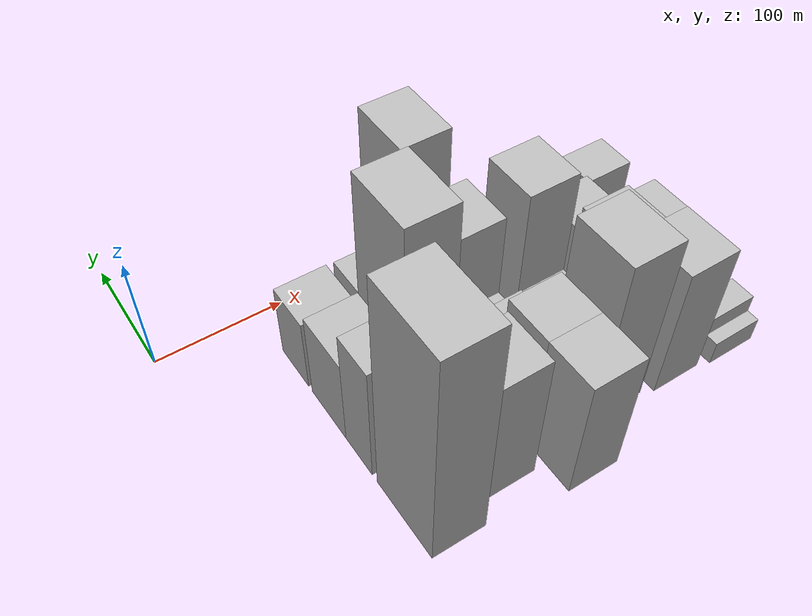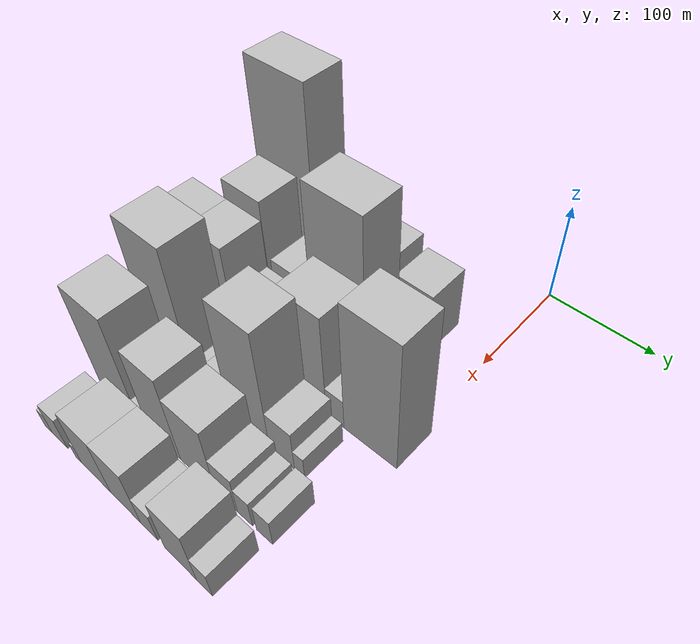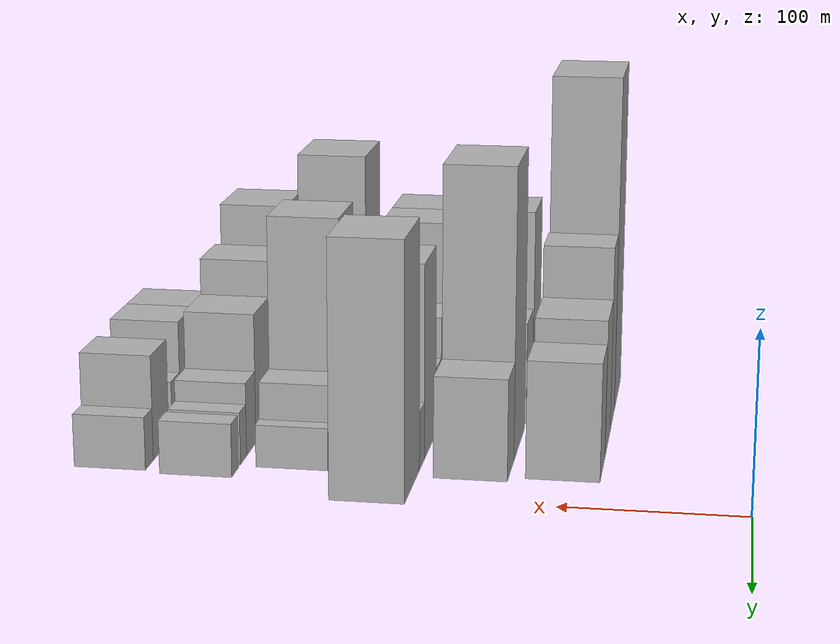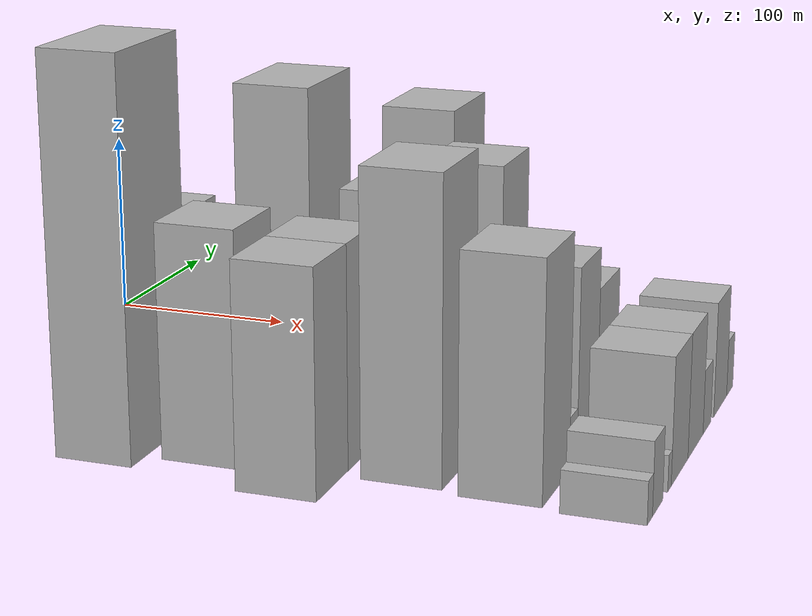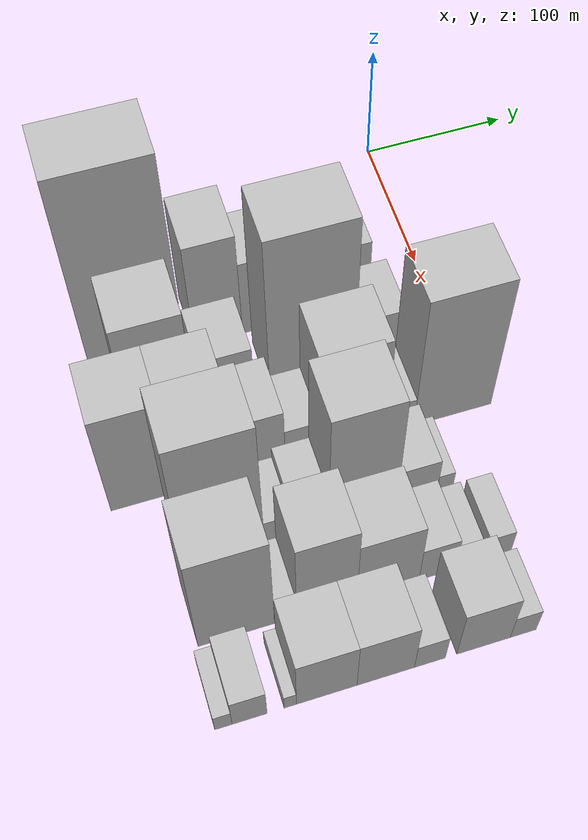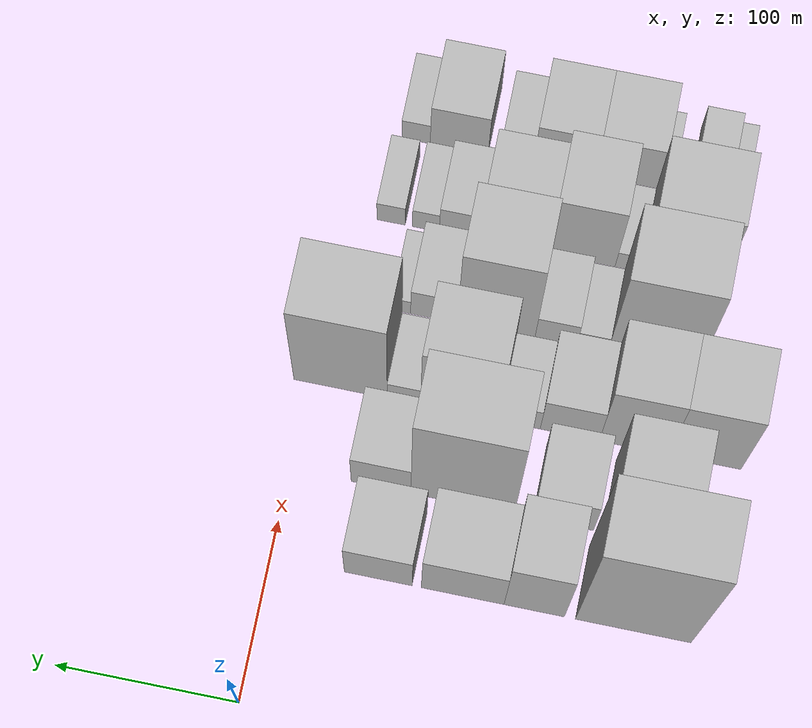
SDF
<sdf version="1.6">
 <world name="default">
  <model name="building_20">
   <static>1</static>
   <pose>100.0000 -197.3069 0 0.000000 0.000000 0.000000</pose>
   <link name="link">
    <pose>0 0 99.00 0 0 0</pose>
    <collision name="collision"><geometry><box><size>40.0000 62.5837 198.0000</size></box></geometry></collision>
    <visual name="visual">
     <cast_shadows>0</cast_shadows>
     <geometry><box><size>40.0000 62.5837 198.0000</size></box></geometry>
     <material>
      <script>
       <uri>model://HANNAS_wall/materials/scripts</uri>
       <uri>model://HANNAS_wall/materials/textures</uri>
       <name>vrc/HANNAS_wall</name>
      </script>
     </material>
    </visual>
   </link>
  </model>
  <model name="building_21">
   <static>1</static>
   <pose>100.0000 -143.6256 0 0.000000 0.000000 0.000000</pose>
   <link name="link">
    <pose>0 0 54.00 0 0 0</pose>
    <collision name="collision"><geometry><box><size>40.0000 32.7790 108.0000</size></box></geometry></collision>
    <visual name="visual">
     <cast_shadows>0</cast_shadows>
     <geometry><box><size>40.0000 32.7790 108.0000</size></box></geometry>
     <material>
      <script>
       <uri>model://HANNAS_wall/materials/scripts</uri>
       <uri>model://HANNAS_wall/materials/textures</uri>
       <name>vrc/HANNAS_wall</name>
      </script>
     </material>
    </visual>
   </link>
  </model>
  <model name="building_22">
   <static>1</static>
   <pose>100.0000 -104.7117 0 0.000000 0.000000 0.000000</pose>
   <link name="link">
    <pose>0 0 39.00 0 0 0</pose>
    <collision name="collision"><geometry><box><size>40.0000 45.0487 78.0000</size></box></geometry></collision>
    <visual name="visual">
     <cast_shadows>0</cast_shadows>
     <geometry><box><size>40.0000 45.0487 78.0000</size></box></geometry>
     <material>
      <script>
       <uri>model://HANNAS_wall/materials/scripts</uri>
       <uri>model://HANNAS_wall/materials/textures</uri>
       <name>vrc/HANNAS_wall</name>
      </script>
     </material>
    </visual>
   </link>
  </model>
  <model name="building_23">
   <static>1</static>
   <pose>100.0000 -58.7064 0 0.000000 0.000000 0.000000</pose>
   <link name="link">
    <pose>0 0 33.00 0 0 0</pose>
    <collision name="collision"><geometry><box><size>40.0000 36.9619 66.0000</size></box></geometry></collision>
    <visual name="visual">
     <cast_shadows>0</cast_shadows>
     <geometry><box><size>40.0000 36.9619 66.0000</size></box></geometry>
     <material>
      <script>
       <uri>model://HANNAS_wall/materials/scripts</uri>
       <uri>model://HANNAS_wall/materials/textures</uri>
       <name>vrc/HANNAS_wall</name>
      </script>
     </material>
    </visual>
   </link>
  </model>
  <model name="building_67">
   <static>1</static>
   <pose>149.0000 -192.8551 0 0.000000 0.000000 0.000000</pose>
   <link name="link">
    <pose>0 0 58.50 0 0 0</pose>
    <collision name="collision"><geometry><box><size>40.0000 42.7557 117.0000</size></box></geometry></collision>
    <visual name="visual">
     <cast_shadows>0</cast_shadows>
     <geometry><box><size>40.0000 42.7557 117.0000</size></box></geometry>
     <material>
      <script>
       <uri>model://HANNAS_wall/materials/scripts</uri>
       <uri>model://HANNAS_wall/materials/textures</uri>
       <name>vrc/HANNAS_wall</name>
      </script>
     </material>
    </visual>
   </link>
  </model>
  <model name="building_68">
   <static>1</static>
   <pose>149.0000 -149.8203 0 0.000000 0.000000 0.000000</pose>
   <link name="link">
    <pose>0 0 30.00 0 0 0</pose>
    <collision name="collision"><geometry><box><size>40.0000 33.3138 60.0000</size></box></geometry></collision>
    <visual name="visual">
     <cast_shadows>0</cast_shadows>
     <geometry><box><size>40.0000 33.3138 60.0000</size></box></geometry>
     <material>
      <script>
       <uri>model://HANNAS_wall/materials/scripts</uri>
       <uri>model://HANNAS_wall/materials/textures</uri>
       <name>vrc/HANNAS_wall</name>
      </script>
     </material>
    </visual>
   </link>
  </model>
  <model name="building_69">
   <static>1</static>
   <pose>149.0000 -94.7857 0 0.000000 0.000000 0.000000</pose>
   <link name="link">
    <pose>0 0 82.50 0 0 0</pose>
    <collision name="collision"><geometry><box><size>40.0000 56.7555 165.0000</size></box></geometry></collision>
    <visual name="visual">
     <cast_shadows>0</cast_shadows>
     <geometry><box><size>40.0000 56.7555 165.0000</size></box></geometry>
     <material>
      <script>
       <uri>model://HANNAS_wall/materials/scripts</uri>
       <uri>model://HANNAS_wall/materials/textures</uri>
       <name>vrc/HANNAS_wall</name>
      </script>
     </material>
    </visual>
   </link>
  </model>
  <model name="building_70">
   <static>1</static>
   <pose>149.0000 -50.0288 0 0.000000 0.000000 0.000000</pose>
   <link name="link">
    <pose>0 0 28.50 0 0 0</pose>
    <collision name="collision"><geometry><box><size>40.0000 32.7581 57.0000</size></box></geometry></collision>
    <visual name="visual">
     <cast_shadows>0</cast_shadows>
     <geometry><box><size>40.0000 32.7581 57.0000</size></box></geometry>
     <material>
      <script>
       <uri>model://HANNAS_wall/materials/scripts</uri>
       <uri>model://HANNAS_wall/materials/textures</uri>
       <name>vrc/HANNAS_wall</name>
      </script>
     </material>
    </visual>
   </link>
  </model>
  <model name="building_112">
   <static>1</static>
   <pose>198.0000 -218.4153 0 0.000000 0.000000 0.000000</pose>
   <link name="link">
    <pose>0 0 55.50 0 0 0</pose>
    <collision name="collision"><geometry><box><size>40.0000 39.8216 111.0000</size></box></geometry></collision>
    <visual name="visual">
     <cast_shadows>0</cast_shadows>
     <geometry><box><size>40.0000 39.8216 111.0000</size></box></geometry>
     <material>
      <script>
       <uri>model://HANNAS_wall/materials/scripts</uri>
       <uri>model://HANNAS_wall/materials/textures</uri>
       <name>vrc/HANNAS_wall</name>
      </script>
     </material>
    </visual>
   </link>
  </model>
  <model name="building_113">
   <static>1</static>
   <pose>198.0000 -179.4373 0 0.000000 0.000000 0.000000</pose>
   <link name="link">
    <pose>0 0 55.50 0 0 0</pose>
    <collision name="collision"><geometry><box><size>40.0000 38.1344 111.0000</size></box></geometry></collision>
    <visual name="visual">
     <cast_shadows>0</cast_shadows>
     <geometry><box><size>40.0000 38.1344 111.0000</size></box></geometry>
     <material>
      <script>
       <uri>model://HANNAS_wall/materials/scripts</uri>
       <uri>model://HANNAS_wall/materials/textures</uri>
       <name>vrc/HANNAS_wall</name>
      </script>
     </material>
    </visual>
   </link>
  </model>
  <model name="building_114">
   <static>1</static>
   <pose>198.0000 -144.1274 0 0.000000 0.000000 0.000000</pose>
   <link name="link">
    <pose>0 0 31.50 0 0 0</pose>
    <collision name="collision"><geometry><box><size>40.0000 32.4854 63.0000</size></box></geometry></collision>
    <visual name="visual">
     <cast_shadows>0</cast_shadows>
     <geometry><box><size>40.0000 32.4854 63.0000</size></box></geometry>
     <material>
      <script>
       <uri>model://HANNAS_wall/materials/scripts</uri>
       <uri>model://HANNAS_wall/materials/textures</uri>
       <name>vrc/HANNAS_wall</name>
      </script>
     </material>
    </visual>
   </link>
  </model>
  <model name="building_115">
   <static>1</static>
   <pose>198.0000 -116.7736 0 0.000000 0.000000 0.000000</pose>
   <link name="link">
    <pose>0 0 19.50 0 0 0</pose>
    <collision name="collision"><geometry><box><size>40.0000 22.2222 39.0000</size></box></geometry></collision>
    <visual name="visual">
     <cast_shadows>0</cast_shadows>
     <geometry><box><size>40.0000 22.2222 39.0000</size></box></geometry>
     <material>
      <script>
       <uri>model://HANNAS_wall/materials/scripts</uri>
       <uri>model://HANNAS_wall/materials/textures</uri>
       <name>vrc/HANNAS_wall</name>
      </script>
     </material>
    </visual>
   </link>
  </model>
  <model name="building_116">
   <static>1</static>
   <pose>198.0000 -83.6625 0 0.000000 0.000000 0.000000</pose>
   <link name="link">
    <pose>0 0 55.50 0 0 0</pose>
    <collision name="collision"><geometry><box><size>40.0000 44.0001 111.0000</size></box></geometry></collision>
    <visual name="visual">
     <cast_shadows>0</cast_shadows>
     <geometry><box><size>40.0000 44.0001 111.0000</size></box></geometry>
     <material>
      <script>
       <uri>model://HANNAS_wall/materials/scripts</uri>
       <uri>model://HANNAS_wall/materials/textures</uri>
       <name>vrc/HANNAS_wall</name>
      </script>
     </material>
    </visual>
   </link>
  </model>
  <model name="building_117">
   <static>1</static>
   <pose>198.0000 -52.4876 0 0.000000 0.000000 0.000000</pose>
   <link name="link">
    <pose>0 0 16.50 0 0 0</pose>
    <collision name="collision"><geometry><box><size>40.0000 18.3497 33.0000</size></box></geometry></collision>
    <visual name="visual">
     <cast_shadows>0</cast_shadows>
     <geometry><box><size>40.0000 18.3497 33.0000</size></box></geometry>
     <material>
      <script>
       <uri>model://HANNAS_wall/materials/scripts</uri>
       <uri>model://HANNAS_wall/materials/textures</uri>
       <name>vrc/HANNAS_wall</name>
      </script>
     </material>
    </visual>
   </link>
  </model>
  <model name="building_118">
   <static>1</static>
   <pose>198.0000 -17.4061 0 0.000000 0.000000 0.000000</pose>
   <link name="link">
    <pose>0 0 70.50 0 0 0</pose>
    <collision name="collision"><geometry><box><size>40.0000 51.8133 141.0000</size></box></geometry></collision>
    <visual name="visual">
     <cast_shadows>0</cast_shadows>
     <geometry><box><size>40.0000 51.8133 141.0000</size></box></geometry>
     <material>
      <script>
       <uri>model://HANNAS_wall/materials/scripts</uri>
       <uri>model://HANNAS_wall/materials/textures</uri>
       <name>vrc/HANNAS_wall</name>
      </script>
     </material>
    </visual>
   </link>
  </model>
  <model name="building_160">
   <static>1</static>
   <pose>247.0000 -180.8012 0 0.000000 0.000000 0.000000</pose>
   <link name="link">
    <pose>0 0 75.00 0 0 0</pose>
    <collision name="collision"><geometry><box><size>40.0000 50.0404 150.0000</size></box></geometry></collision>
    <visual name="visual">
     <cast_shadows>0</cast_shadows>
     <geometry><box><size>40.0000 50.0404 150.0000</size></box></geometry>
     <material>
      <script>
       <uri>model://HANNAS_wall/materials/scripts</uri>
       <uri>model://HANNAS_wall/materials/textures</uri>
       <name>vrc/HANNAS_wall</name>
      </script>
     </material>
    </visual>
   </link>
  </model>
  <model name="building_161">
   <static>1</static>
   <pose>247.0000 -147.1944 0 0.000000 0.000000 0.000000</pose>
   <link name="link">
    <pose>0 0 15.00 0 0 0</pose>
    <collision name="collision"><geometry><box><size>40.0000 17.1731 30.0000</size></box></geometry></collision>
    <visual name="visual">
     <cast_shadows>0</cast_shadows>
     <geometry><box><size>40.0000 17.1731 30.0000</size></box></geometry>
     <material>
      <script>
       <uri>model://HANNAS_wall/materials/scripts</uri>
       <uri>model://HANNAS_wall/materials/textures</uri>
       <name>vrc/HANNAS_wall</name>
      </script>
     </material>
    </visual>
   </link>
  </model>
  <model name="building_162">
   <static>1</static>
   <pose>247.0000 -127.0095 0 0.000000 0.000000 0.000000</pose>
   <link name="link">
    <pose>0 0 21.00 0 0 0</pose>
    <collision name="collision"><geometry><box><size>40.0000 23.1966 42.0000</size></box></geometry></collision>
    <visual name="visual">
     <cast_shadows>0</cast_shadows>
     <geometry><box><size>40.0000 23.1966 42.0000</size></box></geometry>
     <material>
      <script>
       <uri>model://HANNAS_wall/materials/scripts</uri>
       <uri>model://HANNAS_wall/materials/textures</uri>
       <name>vrc/HANNAS_wall</name>
      </script>
     </material>
    </visual>
   </link>
  </model>
  <model name="building_163">
   <static>1</static>
   <pose>247.0000 -93.7710 0 0.000000 0.000000 0.000000</pose>
   <link name="link">
    <pose>0 0 66.00 0 0 0</pose>
    <collision name="collision"><geometry><box><size>40.0000 43.2805 132.0000</size></box></geometry></collision>
    <visual name="visual">
     <cast_shadows>0</cast_shadows>
     <geometry><box><size>40.0000 43.2805 132.0000</size></box></geometry>
     <material>
      <script>
       <uri>model://HANNAS_wall/materials/scripts</uri>
       <uri>model://HANNAS_wall/materials/textures</uri>
       <name>vrc/HANNAS_wall</name>
      </script>
     </material>
    </visual>
   </link>
  </model>
  <model name="building_164">
   <static>1</static>
   <pose>247.0000 -59.1571 0 0.000000 0.000000 0.000000</pose>
   <link name="link">
    <pose>0 0 22.50 0 0 0</pose>
    <collision name="collision"><geometry><box><size>40.0000 25.9474 45.0000</size></box></geometry></collision>
    <visual name="visual">
     <cast_shadows>0</cast_shadows>
     <geometry><box><size>40.0000 25.9474 45.0000</size></box></geometry>
     <material>
      <script>
       <uri>model://HANNAS_wall/materials/scripts</uri>
       <uri>model://HANNAS_wall/materials/textures</uri>
       <name>vrc/HANNAS_wall</name>
      </script>
     </material>
    </visual>
   </link>
  </model>
  <model name="building_165">
   <static>1</static>
   <pose>247.0000 -41.0581 0 0.000000 0.000000 0.000000</pose>
   <link name="link">
    <pose>0 0 12.00 0 0 0</pose>
    <collision name="collision"><geometry><box><size>40.0000 10.2505 24.0000</size></box></geometry></collision>
    <visual name="visual">
     <cast_shadows>0</cast_shadows>
     <geometry><box><size>40.0000 10.2505 24.0000</size></box></geometry>
     <material>
      <script>
       <uri>model://HANNAS_wall/materials/scripts</uri>
       <uri>model://HANNAS_wall/materials/textures</uri>
       <name>vrc/HANNAS_wall</name>
      </script>
     </material>
    </visual>
   </link>
  </model>
  <model name="building_204">
   <static>1</static>
   <pose>296.0000 -187.1168 0 0.000000 0.000000 0.000000</pose>
   <link name="link">
    <pose>0 0 58.50 0 0 0</pose>
    <collision name="collision"><geometry><box><size>40.0000 45.8844 117.0000</size></box></geometry></collision>
    <visual name="visual">
     <cast_shadows>0</cast_shadows>
     <geometry><box><size>40.0000 45.8844 117.0000</size></box></geometry>
     <material>
      <script>
       <uri>model://HANNAS_wall/materials/scripts</uri>
       <uri>model://HANNAS_wall/materials/textures</uri>
       <name>vrc/HANNAS_wall</name>
      </script>
     </material>
    </visual>
   </link>
  </model>
  <model name="building_205">
   <static>1</static>
   <pose>296.0000 -157.5001 0 0.000000 0.000000 0.000000</pose>
   <link name="link">
    <pose>0 0 13.50 0 0 0</pose>
    <collision name="collision"><geometry><box><size>40.0000 13.3490 27.0000</size></box></geometry></collision>
    <visual name="visual">
     <cast_shadows>0</cast_shadows>
     <geometry><box><size>40.0000 13.3490 27.0000</size></box></geometry>
     <material>
      <script>
       <uri>model://HANNAS_wall/materials/scripts</uri>
       <uri>model://HANNAS_wall/materials/textures</uri>
       <name>vrc/HANNAS_wall</name>
      </script>
     </material>
    </visual>
   </link>
  </model>
  <model name="building_206">
   <static>1</static>
   <pose>296.0000 -132.3922 0 0.000000 0.000000 0.000000</pose>
   <link name="link">
    <pose>0 0 48.00 0 0 0</pose>
    <collision name="collision"><geometry><box><size>40.0000 36.8669 96.0000</size></box></geometry></collision>
    <visual name="visual">
     <cast_shadows>0</cast_shadows>
     <geometry><box><size>40.0000 36.8669 96.0000</size></box></geometry>
     <material>
      <script>
       <uri>model://HANNAS_wall/materials/scripts</uri>
       <uri>model://HANNAS_wall/materials/textures</uri>
       <name>vrc/HANNAS_wall</name>
      </script>
     </material>
    </visual>
   </link>
  </model>
  <model name="building_207">
   <static>1</static>
   <pose>296.0000 -94.6415 0 0.000000 0.000000 0.000000</pose>
   <link name="link">
    <pose>0 0 37.50 0 0 0</pose>
    <collision name="collision"><geometry><box><size>40.0000 38.6345 75.0000</size></box></geometry></collision>
    <visual name="visual">
     <cast_shadows>0</cast_shadows>
     <geometry><box><size>40.0000 38.6345 75.0000</size></box></geometry>
     <material>
      <script>
       <uri>model://HANNAS_wall/materials/scripts</uri>
       <uri>model://HANNAS_wall/materials/textures</uri>
       <name>vrc/HANNAS_wall</name>
      </script>
     </material>
    </visual>
   </link>
  </model>
  <model name="building_208">
   <static>1</static>
   <pose>296.0000 -63.8032 0 0.000000 0.000000 0.000000</pose>
   <link name="link">
    <pose>0 0 21.00 0 0 0</pose>
    <collision name="collision"><geometry><box><size>40.0000 23.0421 42.0000</size></box></geometry></collision>
    <visual name="visual">
     <cast_shadows>0</cast_shadows>
     <geometry><box><size>40.0000 23.0421 42.0000</size></box></geometry>
     <material>
      <script>
       <uri>model://HANNAS_wall/materials/scripts</uri>
       <uri>model://HANNAS_wall/materials/textures</uri>
       <name>vrc/HANNAS_wall</name>
      </script>
     </material>
    </visual>
   </link>
  </model>
  <model name="building_209">
   <static>1</static>
   <pose>296.0000 -44.7045 0 0.000000 0.000000 0.000000</pose>
   <link name="link">
    <pose>0 0 15.00 0 0 0</pose>
    <collision name="collision"><geometry><box><size>40.0000 15.1554 30.0000</size></box></geometry></collision>
    <visual name="visual">
     <cast_shadows>0</cast_shadows>
     <geometry><box><size>40.0000 15.1554 30.0000</size></box></geometry>
     <material>
      <script>
       <uri>model://HANNAS_wall/materials/scripts</uri>
       <uri>model://HANNAS_wall/materials/textures</uri>
       <name>vrc/HANNAS_wall</name>
      </script>
     </material>
    </visual>
   </link>
  </model>
  <model name="building_210">
   <static>1</static>
   <pose>296.0000 -25.1783 0 0.000000 0.000000 0.000000</pose>
   <link name="link">
    <pose>0 0 15.00 0 0 0</pose>
    <collision name="collision"><geometry><box><size>40.0000 15.8970 30.0000</size></box></geometry></collision>
    <visual name="visual">
     <cast_shadows>0</cast_shadows>
     <geometry><box><size>40.0000 15.8970 30.0000</size></box></geometry>
     <material>
      <script>
       <uri>model://HANNAS_wall/materials/scripts</uri>
       <uri>model://HANNAS_wall/materials/textures</uri>
       <name>vrc/HANNAS_wall</name>
      </script>
     </material>
    </visual>
   </link>
  </model>
  <model name="building_256">
   <static>1</static>
   <pose>345.0000 -208.6109 0 0.000000 0.000000 0.000000</pose>
   <link name="link">
    <pose>0 0 10.50 0 0 0</pose>
    <collision name="collision"><geometry><box><size>40.0000 10.0029 21.0000</size></box></geometry></collision>
    <visual name="visual">
     <cast_shadows>0</cast_shadows>
     <geometry><box><size>40.0000 10.0029 21.0000</size></box></geometry>
     <material>
      <script>
       <uri>model://HANNAS_wall/materials/scripts</uri>
       <uri>model://HANNAS_wall/materials/textures</uri>
       <name>vrc/HANNAS_wall</name>
      </script>
     </material>
    </visual>
   </link>
  </model>
  <model name="building_257">
   <static>1</static>
   <pose>345.0000 -193.4356 0 0.000000 0.000000 0.000000</pose>
   <link name="link">
    <pose>0 0 18.00 0 0 0</pose>
    <collision name="collision"><geometry><box><size>40.0000 20.3476 36.0000</size></box></geometry></collision>
    <visual name="visual">
     <cast_shadows>0</cast_shadows>
     <geometry><box><size>40.0000 20.3476 36.0000</size></box></geometry>
     <material>
      <script>
       <uri>model://HANNAS_wall/materials/scripts</uri>
       <uri>model://HANNAS_wall/materials/textures</uri>
       <name>vrc/HANNAS_wall</name>
      </script>
     </material>
    </visual>
   </link>
  </model>
  <model name="building_258">
   <static>1</static>
   <pose>345.0000 -169.6574 0 0.000000 0.000000 0.000000</pose>
   <link name="link">
    <pose>0 0 9.00 0 0 0</pose>
    <collision name="collision"><geometry><box><size>40.0000 7.2088 18.0000</size></box></geometry></collision>
    <visual name="visual">
     <cast_shadows>0</cast_shadows>
     <geometry><box><size>40.0000 7.2088 18.0000</size></box></geometry>
     <material>
      <script>
       <uri>model://HANNAS_wall/materials/scripts</uri>
       <uri>model://HANNAS_wall/materials/textures</uri>
       <name>vrc/HANNAS_wall</name>
      </script>
     </material>
    </visual>
   </link>
  </model>
  <model name="building_259">
   <static>1</static>
   <pose>345.0000 -148.1530 0 0.000000 0.000000 0.000000</pose>
   <link name="link">
    <pose>0 0 31.50 0 0 0</pose>
    <collision name="collision"><geometry><box><size>40.0000 35.7999 63.0000</size></box></geometry></collision>
    <visual name="visual">
     <cast_shadows>0</cast_shadows>
     <geometry><box><size>40.0000 35.7999 63.0000</size></box></geometry>
     <material>
      <script>
       <uri>model://HANNAS_wall/materials/scripts</uri>
       <uri>model://HANNAS_wall/materials/textures</uri>
       <name>vrc/HANNAS_wall</name>
      </script>
     </material>
    </visual>
   </link>
  </model>
  <model name="building_260">
   <static>1</static>
   <pose>345.0000 -112.9886 0 0.000000 0.000000 0.000000</pose>
   <link name="link">
    <pose>0 0 31.50 0 0 0</pose>
    <collision name="collision"><geometry><box><size>40.0000 34.5290 63.0000</size></box></geometry></collision>
    <visual name="visual">
     <cast_shadows>0</cast_shadows>
     <geometry><box><size>40.0000 34.5290 63.0000</size></box></geometry>
     <material>
      <script>
       <uri>model://HANNAS_wall/materials/scripts</uri>
       <uri>model://HANNAS_wall/materials/textures</uri>
       <name>vrc/HANNAS_wall</name>
      </script>
     </material>
    </visual>
   </link>
  </model>
  <model name="building_261">
   <static>1</static>
   <pose>345.0000 -86.3514 0 0.000000 0.000000 0.000000</pose>
   <link name="link">
    <pose>0 0 16.50 0 0 0</pose>
    <collision name="collision"><geometry><box><size>40.0000 18.7453 33.0000</size></box></geometry></collision>
    <visual name="visual">
     <cast_shadows>0</cast_shadows>
     <geometry><box><size>40.0000 18.7453 33.0000</size></box></geometry>
     <material>
      <script>
       <uri>model://HANNAS_wall/materials/scripts</uri>
       <uri>model://HANNAS_wall/materials/textures</uri>
       <name>vrc/HANNAS_wall</name>
      </script>
     </material>
    </visual>
   </link>
  </model>
  <model name="building_262">
   <static>1</static>
   <pose>345.0000 -53.5828 0 0.000000 0.000000 0.000000</pose>
   <link name="link">
    <pose>0 0 30.00 0 0 0</pose>
    <collision name="collision"><geometry><box><size>40.0000 32.7918 60.0000</size></box></geometry></collision>
    <visual name="visual">
     <cast_shadows>0</cast_shadows>
     <geometry><box><size>40.0000 32.7918 60.0000</size></box></geometry>
     <material>
      <script>
       <uri>model://HANNAS_wall/materials/scripts</uri>
       <uri>model://HANNAS_wall/materials/textures</uri>
       <name>vrc/HANNAS_wall</name>
      </script>
     </material>
    </visual>
   </link>
  </model>
  <model name="building_263">
   <static>1</static>
   <pose>345.0000 -29.1350 0 0.000000 0.000000 0.000000</pose>
   <link name="link">
    <pose>0 0 15.00 0 0 0</pose>
    <collision name="collision"><geometry><box><size>40.0000 16.1038 30.0000</size></box></geometry></collision>
    <visual name="visual">
     <cast_shadows>0</cast_shadows>
     <geometry><box><size>40.0000 16.1038 30.0000</size></box></geometry>
     <material>
      <script>
       <uri>model://HANNAS_wall/materials/scripts</uri>
       <uri>model://HANNAS_wall/materials/textures</uri>
       <name>vrc/HANNAS_wall</name>
      </script>
     </material>
    </visual>
   </link>
  </model>
 </world>
</sdf>
